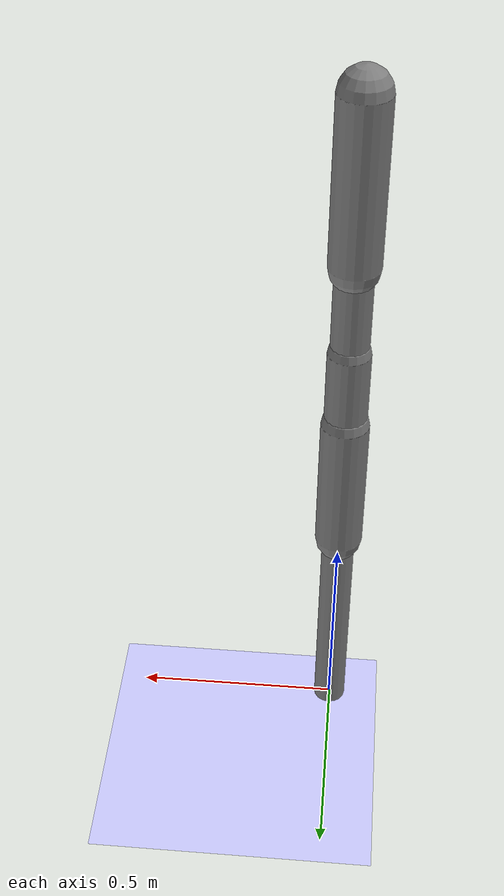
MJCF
<?xml version='1.0' encoding='UTF-8'?>
<mujoco model="robot_model">
  <worldbody>
    <light name="light" pos="0 -3 10" dir="0 0.5 -1" diffuse=".8 .8 .8" specular="0.1 0.1 0.1"/>
    <geom name="floor" type="plane" size="10.0 10.0 0.1" pos="0 0 0" rgba="0.8 0.8 1 1" contype="2" conaffinity="1"/>
    <body name="limb0" pos="0 0 0">
      <geom type="capsule" fromto="0 0 0 0 0 0.5537873579799844" size="0.04" density="525.8178689394135" contype="1" conaffinity="2"/>
      <site type="sphere" size="0.01" name="limb0_site0" pos="0 0 0.5537873579799844"/>
      <site type="sphere" size="0.01" name="limb0_site1" pos="0 0 0.4656117197810869"/>
      <freejoint name="limb0_root"/>
      <body name="limb1" pos="0 0 0.5537873579799844">
        <geom type="capsule" fromto="0 0 0 0 0 0.34784341191026547" size="0.05780096325172323" density="1003.386613734127" contype="1" conaffinity="2"/>
        <site type="sphere" size="0.01" name="limb1_site0" pos="0 0 0.33235869606856727"/>
        <site type="sphere" size="0.01" name="limb1_site1" pos="0 0 0.09085494210317346"/>
        <site type="sphere" size="0.01" name="limb1_site2" pos="0 0 0.06927704373718688"/>
        <body name="limb2" pos="0 0 0.33235869606856727">
          <geom type="capsule" fromto="0 0 0 0 0 0.5" size="0.045329815490319995" density="1017.2531489540214" contype="1" conaffinity="2"/>
          <site type="sphere" size="0.01" name="limb2_site0" pos="0 0 0.28431863432086774"/>
          <site type="sphere" size="0.01" name="limb2_site1" pos="0 0 0.4365154153176309"/>
          <site type="sphere" size="0.01" name="limb2_site2" pos="0 0 0.1982484344008178"/>
          <body name="limb3" pos="0 0 0.28431863432086774">
            <geom type="capsule" fromto="0 0 0 0 0 0.20578184635435443" size="0.0264772811132037" density="921.4734911558404" contype="1" conaffinity="2"/>
            <joint name="joint_limb2_limb3_0" type="hinge" axis="0 1 0" range="-51.59203017742993 51.59203017742993" damping="5.0"/>
          </body>
          <body name="limb4" pos="0 0 0.4365154153176309">
            <geom type="capsule" fromto="0 0 0 0 0 0.3980710070946176" size="0.06" density="889.837396687485" contype="1" conaffinity="2"/>
            <joint name="joint_limb2_limb4_0" type="hinge" axis="1 0 0" range="-38.680136556965635 38.680136556965635" damping="5.0"/>
          </body>
          <body name="limb5" pos="0 0 0.1982484344008178">
            <geom type="capsule" fromto="0 0 0 0 0 0.2915545876731404" size="0.041653011905912966" density="980.8720051175214" contype="1" conaffinity="2"/>
            <joint name="joint_limb2_limb5_0" type="hinge" axis="0 1 0" range="-107.14717313770412 107.14717313770412" damping="5.0"/>
          </body>
          <joint name="joint_limb1_limb2_0" type="hinge" axis="0 1 0" range="-57.66449740169123 57.66449740169123" damping="5.0"/>
        </body>
        <body name="limb6" pos="0 0 0.09085494210317346">
          <geom type="capsule" fromto="0 0 0 0 0 0.4553959547646001" size="0.05112992904407712" density="905.1932138092933" contype="1" conaffinity="2"/>
          <joint name="joint_limb1_limb6_0" type="hinge" axis="0 0 1" range="-81.08974346532182 81.08974346532182" damping="5.0"/>
        </body>
        <body name="limb7" pos="0 0 0.06927704373718688">
          <geom type="capsule" fromto="0 0 0 0 0 0.5" size="0.04014262190167652" density="964.5981838472997" contype="1" conaffinity="2"/>
          <site type="sphere" size="0.01" name="limb7_site0" pos="0 0 0.06628638866102449"/>
          <body name="limb8" pos="0 0 0.06628638866102449">
            <geom type="capsule" fromto="0 0 0 0 0 0.3159768240312215" size="0.04398226962321314" density="874.9200254675034" contype="1" conaffinity="2"/>
            <joint name="joint_limb7_limb8_0" type="hinge" axis="0 0 1" range="-118.11198317294439 118.11198317294439" damping="5.0"/>
          </body>
          <joint name="joint_limb1_limb7_0" type="hinge" axis="0 0 1" range="-20.0 20.0" damping="5.0"/>
        </body>
        <joint name="joint_limb0_limb1_0" type="hinge" axis="0 1 0" range="-93.48133100342702 93.48133100342702" damping="5.0"/>
      </body>
      <body name="limb9" pos="0 0 0.4656117197810869">
        <geom type="capsule" fromto="0 0 0 0 0 0.24289503574557547" size="0.03128601722470996" density="865.5400845016025" contype="1" conaffinity="2"/>
        <joint name="joint_limb0_limb9_0" type="hinge" axis="0 1 0" range="-63.22844417036358 63.22844417036358" damping="5.0"/>
      </body>
    </body>
  </worldbody>
  <actuator>
    <position name="position_actuator_joint_limb0_limb1_0" joint="joint_limb0_limb1_0" gear="2.0" inheritrange="1" forcerange="-22.374671965647444 22.374671965647444" forcelimited="true" kp="100.0"/>
    <position name="position_actuator_joint_limb1_limb2_0" joint="joint_limb1_limb2_0" gear="1.6660657884047363" inheritrange="1" forcerange="-18.401183504925072 18.401183504925072" forcelimited="true" kp="100.0"/>
    <position name="position_actuator_joint_limb2_limb3_0" joint="joint_limb2_limb3_0" gear="1.8009346564222402" inheritrange="1" forcerange="-2.446355024710029 2.446355024710029" forcelimited="true" kp="100.0"/>
    <position name="position_actuator_joint_limb2_limb4_0" joint="joint_limb2_limb4_0" gear="1.5727331217504008" inheritrange="1" forcerange="-24.05611204455587 24.05611204455587" forcelimited="true" kp="100.0"/>
    <position name="position_actuator_joint_limb2_limb5_0" joint="joint_limb2_limb5_0" gear="0.7060054095369748" inheritrange="1" forcerange="-9.27832460712748 9.27832460712748" forcelimited="true" kp="100.0"/>
    <position name="position_actuator_joint_limb1_limb6_0" joint="joint_limb1_limb6_0" gear="0.5232975446209088" inheritrange="1" forcerange="-19.46191769120985 19.46191769120985" forcelimited="true" kp="100.0"/>
    <position name="position_actuator_joint_limb1_limb7_0" joint="joint_limb1_limb7_0" gear="1.7866470493797637" inheritrange="1" forcerange="-13.51493144715479 13.51493144715479" forcelimited="true" kp="100.0"/>
    <position name="position_actuator_joint_limb7_limb8_0" joint="joint_limb7_limb8_0" gear="1.2993474610322076" inheritrange="1" forcerange="-9.959425629687896 9.959425629687896" forcelimited="true" kp="100.0"/>
    <position name="position_actuator_joint_limb0_limb9_0" joint="joint_limb0_limb9_0" gear="1.068427433655958" inheritrange="1" forcerange="-3.7875411411789712 3.7875411411789712" forcelimited="true" kp="100.0"/>
  </actuator>
</mujoco>
